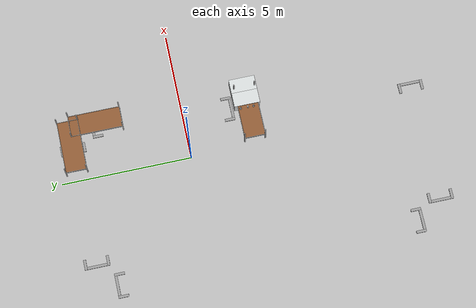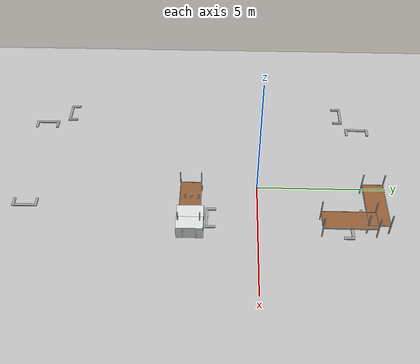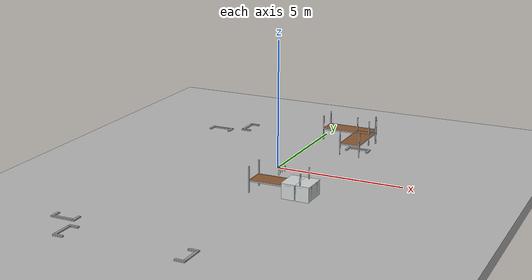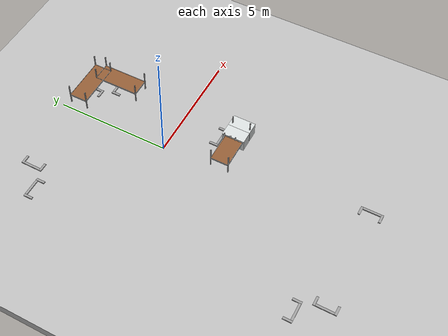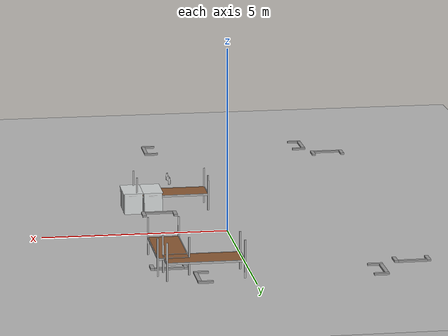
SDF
<sdf version="1.6">
 <world name="default">
  <light name="light0" type="directional">
   <pose>0 -18.818 8 0.75 -0 0</pose>
   <diffuse>0.5 0.5 0.5 1</diffuse>
   <specular>0.1 0.1 0.1 1</specular>
   <direction>0.1 0.1 -0.9</direction>
   <attenuation>
    <range>20</range>
    <constant>0.5</constant>
    <linear>0.01</linear>
    <quadratic>0.001</quadratic>
   </attenuation>
   <cast_shadows>0</cast_shadows>
  </light>
  <light name="light3" type="directional">
   <pose>3.9239 1.64974 4 0 1.2 0</pose>
   <diffuse>0.5 0.5 0.5 1</diffuse>
   <specular>0.1 0.1 0.1 1</specular>
   <direction>0.1 0.1 -0.9</direction>
   <attenuation>
    <range>20</range>
    <constant>0.5</constant>
    <linear>0.01</linear>
    <quadratic>0.001</quadratic>
   </attenuation>
   <cast_shadows>0</cast_shadows>
  </light>
  <light name="light5" type="directional">
   <pose>0.454419 12.4783 5 -0.8 0 0</pose>
   <diffuse>0.5 0.5 0.5 1</diffuse>
   <specular>0.1 0.1 0.1 1</specular>
   <direction>0.1 0.1 -0.9</direction>
   <attenuation>
    <range>20</range>
    <constant>0.5</constant>
    <linear>0.01</linear>
    <quadratic>0.001</quadratic>
   </attenuation>
   <cast_shadows>0</cast_shadows>
  </light>
  <scene>
   <shadows>false</shadows>
   <ambient>0.5 0.5 0.5 1.0</ambient>
   <grid>false</grid>
   <sky><time>22</time><sunrise>20</sunrise><sunset>21</sunset><clouds><humidity>0</humidity></clouds></sky>
  </scene>
  <include><uri>model://ground_plane</uri></include>
  <include><uri>model://moon_surface</uri><pose>0 0 -0.25 0 0 0</pose></include>
  <include><uri>model://rack_base</uri><name>rack_base</name><pose>1.421 4.35 0.05 0 -0 -1.57</pose></include>
  <include><uri>model://rack</uri><name>rack1</name><pose>1.26 4.35 0.1 0 -0 3.14</pose></include>
  <include><uri>model://rack</uri><name>rack2</name><pose>2.03 3.30 0.1 0 -0 -1.57</pose></include>
  <include><uri>model://rack</uri><name>rack3</name><pose>1.20 -2.53 0.0 0 0 -3.14</pose></include>
  <include><uri>model://greenCan</uri><name>greenCan</name><pose>1.28 -2.48 0.86 0.0 0.0 0.0</pose></include>
  <include><uri>model://blueBottle</uri><name>blueBottle</name><pose>1.28 -2.7 0.86 0.0 0.0 0.0</pose></include>
  <include><uri>model://redBottle</uri><name>redBottle</name><pose>1.28 -2.2 0.86 0.0 0.0 0.0</pose></include>
  <include><uri>model://drop_table</uri><name>drop_table_0</name><pose>2.3 -2.5 0 0 -0 0.0</pose></include>
  <include><uri>model://drop_table</uri><name>drop_table_1</name><pose>1.75 -2.5 0 0 -0 0.0</pose></include>
  <plugin name="gazebo_link_attacher" filename="libgazebo_link_attacher.so"/>
  <plugin name="gazebo_link_ur5_attacher" filename="libgazebo_link_ur5_attacher.so"/>
 </world>
</sdf>

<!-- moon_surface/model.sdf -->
<sdf version="1.6">
  <model name="moon_surface">
    <static>true</static>

    <link name="link">
      <pose>0 0 0.003 0 0 0</pose>

      <visual name="visual1">
        <cast_shadows>false</cast_shadows>
        <geometry>
          <mesh><uri>model://moon_surface/meshes/moon_surface.dae</uri></mesh>
        </geometry>
        <material>
          <shader type='pixel'/>
        </material>
        <pose>0 0 0 0 0 0</pose>
        <transparency>0</transparency>
      </visual>
    </link>
  </model>
</sdf>

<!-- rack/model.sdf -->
<sdf version='1.6'>
  <model name='rack'>
    <link name="surface">
      <inertial>
          <mass>0.1</mass>
          <inertia>
              <ixx>0.00001</ixx>
              <ixy>0.000</ixy>
              <ixz>0.000</ixz>
              <iyy>0.00001</iyy>
              <iyz>0.000</iyz>
              <izz>0.00001</izz>
          </inertia>
      </inertial>
      <visual name='surface_visual'>
        <pose relative_to=''>0 0 0.45 0 0 0</pose>
        <geometry>
          <box>
            <size>2 0.8 0.03</size>
          </box>
        </geometry>
        <material>
          <ambient>0.55 0.35 0.2 1</ambient>
          <diffuse>0.55 0.35 0.2 1</diffuse>
          <specular>0.1 0.1 0.1 1</specular>
          <emissive>0 0 0 1</emissive>
        </material>
        <transparency>0</transparency>
        <cast_shadows>1</cast_shadows>
      </visual>
      <collision name='surface_collision'>
        <pose relative_to=''>0 0 0.45 0 0 0</pose>
        <laser_retro>0</laser_retro>
        <max_contacts>10</max_contacts>
        <geometry>
          <box>
            <size>2 0.82 0.03</size>
          </box>
        </geometry>
        <surface>
          <friction>
            <ode>
              <mu>1000000</mu>
              <mu2>1000000</mu2>
            </ode>
          </friction>
          <bounce>
            <restitution_coefficient>0</restitution_coefficient>
          </bounce>
          <contact>
            <ode>
              <kp>1e13</kp>
              <kd>1</kd>
            </ode>
          </contact>
        </surface>
      </collision>

      <visual name='left_holding_visual'>
        <pose relative_to=''>0 0.4 0.45 0 0 0</pose>
        <geometry>
          <box>
            <size>1.98 0.02 0.05</size>
          </box>
        </geometry>
        <material>
          <ambient>0.3 0.3 0.3 1</ambient>
          <diffuse>0.7 0.7 0.7 1</diffuse>
          <specular>0.01 0.01 0.01 1</specular>
          <emissive>0 0 0 1</emissive>
          <pbr>
            <metal>
              <roughness>0.8</roughness>
              <metalness>0.1</metalness>
            </metal>
          </pbr>
        </material>
        <transparency>0</transparency>
        <cast_shadows>1</cast_shadows>
      </visual>

      <visual name='right_holding_visual'>
        <pose relative_to=''>0 -0.4 0.45 0 0 0</pose>
        <geometry>
          <box>
            <size>1.98 0.02 0.05</size>
          </box>
        </geometry>
        <material>
          <ambient>0.3 0.3 0.3 1</ambient>
          <diffuse>0.7 0.7 0.7 1</diffuse>
          <specular>0.01 0.01 0.01 1</specular>
          <emissive>0 0 0 1</emissive>
          <pbr>
            <metal>
              <roughness>0.8</roughness>
              <metalness>0.1</metalness>
            </metal>
          </pbr>
        </material>
        <transparency>0</transparency>
        <cast_shadows>1</cast_shadows>
      </visual>

      <visual name='front_holding_visual'>
        <pose relative_to=''>1.0 0 0.45 0 0 1.57</pose>
        <geometry>
          <box>
            <size>0.8 0.02 0.05</size>
          </box>
        </geometry>
        <material>
          <ambient>0.3 0.3 0.3 1</ambient>
          <diffuse>0.7 0.7 0.7 1</diffuse>
          <specular>0.01 0.01 0.01 1</specular>
          <emissive>0 0 0 1</emissive>
          <pbr>
            <metal>
              <roughness>0.8</roughness>
              <metalness>0.1</metalness>
            </metal>
          </pbr>
        </material>
        <transparency>0</transparency>
        <cast_shadows>1</cast_shadows>
      </visual>

      <visual name='back_holding_visual'>
        <pose relative_to=''>-1.0 0 0.45 0 0 1.57</pose>
        <geometry>
          <box>
            <size>0.8 0.02 0.05</size>
          </box>
        </geometry>
        <material>
          <ambient>0.3 0.3 0.3 1</ambient>
          <diffuse>0.7 0.7 0.7 1</diffuse>
          <specular>0.01 0.01 0.01 1</specular>
          <emissive>0 0 0 1</emissive>
          <pbr>
            <metal>
              <roughness>0.8</roughness>
              <metalness>0.1</metalness>
            </metal>
          </pbr>
        </material>
        <transparency>0</transparency>
        <cast_shadows>1</cast_shadows>
      </visual>

      <visual name='front_left_leg_visual'>
        <pose relative_to=''>0.99 0.4 0.5 0 0 0</pose>
        <geometry>
          <box>
            <size>0.04 0.04 1.0</size>
          </box>
        </geometry>
        <material>
          <ambient>0.3 0.3 0.3 1</ambient>
          <diffuse>0.7 0.7 0.7 1</diffuse>
          <specular>0.01 0.01 0.01 1</specular>
          <emissive>0 0 0 1</emissive>
          <pbr>
            <metal>
              <roughness>0.8</roughness>
              <metalness>0.1</metalness>
            </metal>
          </pbr>
        </material>
        <cast_shadows>1</cast_shadows>
      </visual>
      <collision name='front_left_leg_collision'>
        <pose relative_to=''>0.99 0.4 0.5 0 0 0</pose>
        <laser_retro>0</laser_retro>
        <max_contacts>10</max_contacts>
        <geometry>
          <box>
            <size>0.04 0.04 1.0</size>
          </box>
        </geometry>
        <surface>
          <friction>
            <ode>
              <mu>0.1</mu>
              <mu2>0.1</mu2>
            </ode>
          </friction>
          <bounce>
            <restitution_coefficient>0</restitution_coefficient>
          </bounce>
          <contact>
            <ode>
              <kp>1e6</kp>
              <kd>1</kd>
            </ode>
          </contact>
        </surface>
      </collision>

      <visual name='front_right_leg_visual'>
        <pose relative_to=''>0.99 -0.4 0.5 0 0 0</pose>
        <geometry>
          <box>
            <size>0.04 0.04 1.0</size>
          </box>
        </geometry>
        <material>
          <ambient>0.3 0.3 0.3 1</ambient>
          <diffuse>0.7 0.7 0.7 1</diffuse>
          <specular>0.01 0.01 0.01 1</specular>
          <emissive>0 0 0 1</emissive>
          <pbr>
            <metal>
              <roughness>0.8</roughness>
              <metalness>0.1</metalness>
            </metal>
          </pbr>
        </material>
        <cast_shadows>1</cast_shadows>
      </visual>
      <collision name='front_right_leg_collision'>
        <pose relative_to=''>0.99 -0.4 0.5 0 0 0</pose>
        <laser_retro>0</laser_retro>
        <max_contacts>10</max_contacts>
        <geometry>
          <box>
            <size>0.04 0.04 1.0</size>
          </box>
        </geometry>
        <surface>
          <friction>
            <ode>
              <mu>0.1</mu>
              <mu2>0.1</mu2>
            </ode>
          </friction>
          <bounce>
            <restitution_coefficient>0</restitution_coefficient>
          </bounce>
          <contact>
            <ode>
              <kp>1e6</kp>
              <kd>1</kd>
            </ode>
          </contact>
        </surface>
      </collision>

      <visual name='back_left_leg_visual'>
        <pose relative_to=''>-0.99 0.4 0.5 0 0 0</pose>
        <geometry>
          <box>
            <size>0.04 0.04 1.0</size>
          </box>
        </geometry>
        <material>
          <ambient>0.3 0.3 0.3 1</ambient>
          <diffuse>0.7 0.7 0.7 1</diffuse>
          <specular>0.01 0.01 0.01 1</specular>
          <emissive>0 0 0 1</emissive>
          <pbr>
            <metal>
              <roughness>0.8</roughness>
              <metalness>0.1</metalness>
            </metal>
          </pbr>
        </material>
        <cast_shadows>1</cast_shadows>
      </visual>
      <collision name='back_left_leg_collision'>
        <pose relative_to=''>-0.99 0.4 0.5 0 0 0</pose>
        <laser_retro>0</laser_retro>
        <max_contacts>10</max_contacts>
        <geometry>
          <box>
            <size>0.04 0.04 1.0</size>
          </box>
        </geometry>
        <surface>
          <friction>
            <ode>
              <mu>0.1</mu>
              <mu2>0.1</mu2>
            </ode>
          </friction>
          <bounce>
            <restitution_coefficient>0</restitution_coefficient>
          </bounce>
          <contact>
            <ode>
              <kp>1e6</kp>
              <kd>1</kd>
            </ode>
          </contact>
        </surface>
      </collision>

      <visual name='back_right_leg_visual'>
        <pose relative_to=''>-0.99 -0.4 0.5 0 0 0</pose>
        <geometry>
          <box>
            <size>0.04 0.04 1.0</size>
          </box>
        </geometry>
        <material>
          <ambient>0.3 0.3 0.3 1</ambient>
          <diffuse>0.7 0.7 0.7 1</diffuse>
          <specular>0.01 0.01 0.01 1</specular>
          <emissive>0 0 0 1</emissive>
          <pbr>
            <metal>
              <roughness>0.8</roughness>
              <metalness>0.1</metalness>
            </metal>
          </pbr>
        </material>
        <cast_shadows>1</cast_shadows>
      </visual>
      <collision name='back_right_leg_collision'>
        <pose relative_to=''>-0.99 -0.4 0.5 0 0 0</pose>
        <laser_retro>0</laser_retro>
        <max_contacts>10</max_contacts>
        <geometry>
          <box>
            <size>0.04 0.04 1.0</size>
          </box>
        </geometry>
        <surface>
          <friction>
            <ode>
              <mu>0.1</mu>
              <mu2>0.1</mu2>
            </ode>
          </friction>
          <bounce>
            <restitution_coefficient>0</restitution_coefficient>
          </bounce>
          <contact>
            <ode>
              <kp>1e6</kp>
              <kd>1</kd>
            </ode>
          </contact>
        </surface>
      </collision>
    </link>

  </model>
</sdf>

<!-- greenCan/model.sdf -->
<sdf version='1.6'>
	<model name='Green Can'>
	<static>0</static>
	      <link name='link'>
	        <inertial>
	          <mass>0.3</mass>
	          <inertia>
	            <ixx>0.00055575</ixx>
	            <ixy>0</ixy>
	            <ixz>0</ixz>
	            <iyy>0.00055575</iyy>
	            <iyz>0</iyz>
	            <izz>0.0001755</izz>
	          </inertia>
	        </inertial>
	        <collision name='collision'>
	          <geometry>
	            <mesh>
	              <uri>model://greenCan/meshes/canGreen.dae</uri>
			<scale>0.033 0.033 0.033</scale>
	            </mesh>
	          </geometry>
	          <surface>
	            <friction>
	              <ode>
	                <mu>3</mu>
	                <mu2>3</mu2>
	              </ode>
	              <torsional>
	                <ode/>
	              </torsional>
	            </friction>
	            <contact>
	              <ode>
	                <kp>1e+07</kp>
	                <kd>1</kd>
	                <min_depth>0.001</min_depth>
	                <max_vel>0.5</max_vel>
	              </ode>
	            </contact>
	            <bounce/>
	          </surface>
	          <max_contacts>10</max_contacts>
	        </collision>
	        <visual name='visual'>
	          <geometry>
	           	 <mesh>
	                <uri>model://greenCan/meshes/canGreen.dae</uri>
			<scale>0.033 0.033 0.033</scale>
	            </mesh>
	          </geometry>
	        </visual>
	        <self_collide>0</self_collide>
	        <enable_wind>0</enable_wind>
	        <kinematic>0</kinematic>
	      </link>
	    </model>
</sdf>

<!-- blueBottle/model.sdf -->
<sdf version='1.6'>
	<model name='Blue Bottle'>
	<static>0</static>
	      <link name='link'>
	        <inertial>
	          <mass>0.3</mass>
	          <inertia>
	            <ixx>0.00055575</ixx>
	            <ixy>0</ixy>
	            <ixz>0</ixz>
	            <iyy>0.00055575</iyy>
	            <iyz>0</iyz>
	            <izz>0.0001755</izz>
	          </inertia>
	        </inertial>
	        <collision name='collision'>
	          <geometry>
	            <mesh>
	              <uri>model://blueBottle/meshes/bottleBlue.dae</uri>
			<scale>0.034 0.034 0.034</scale>
	            </mesh>
	          </geometry>
	          <surface>
	            <friction>
	              <ode>
	                <mu>3</mu>
	                <mu2>3</mu2>
	              </ode>
	              <torsional>
	                <ode/>
	              </torsional>
	            </friction>
	            <contact>
	              <ode>
	                <kp>1e+07</kp>
	                <kd>1</kd>
	                <min_depth>0.001</min_depth>
	                <max_vel>0.5</max_vel>
	              </ode>
	            </contact>
	            <bounce/>
	          </surface>
	          <max_contacts>10</max_contacts>
	        </collision>
	        <visual name='visual'>
	          <geometry>
	           	 <mesh>
	                <uri>model://blueBottle/meshes/bottleBlue.dae</uri>
			<scale>0.034 0.034 0.034</scale>
	            </mesh>
	          </geometry>
	        </visual>
	        <self_collide>0</self_collide>
	        <enable_wind>0</enable_wind>
	        <kinematic>0</kinematic>
	      </link>
	    </model>
</sdf>

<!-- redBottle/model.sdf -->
<sdf version='1.6'>
	<model name='Red Bottle'>
	<static>0</static>
	      <link name='link'>
	        <inertial>
	          <mass>0.3</mass>
	          <inertia>
	            <ixx>0.00055575</ixx>
	            <ixy>0</ixy>
	            <ixz>0</ixz>
	            <iyy>0.00055575</iyy>
	            <iyz>0</iyz>
	            <izz>0.0001755</izz>
	          </inertia>
	        </inertial>
	        <collision name='collision'>
	          <geometry>
	            <mesh>
	              <uri>model://redBottle/meshes/bottleRedBlue.dae</uri>
			      <scale>0.034 0.034 0.034</scale>
	            </mesh>
	          </geometry>
	          <surface>
	            <friction>
	              <ode>
	                <mu>3</mu>
	                <mu2>3</mu2>
	              </ode>
	              <torsional>
	                <ode/>
	              </torsional>
	            </friction>
	            <contact>
	              <ode>
	                <kp>1e+07</kp>
	                <kd>1</kd>
	                <min_depth>0.001</min_depth>
	                <max_vel>0.5</max_vel>
	              </ode>
	            </contact>
	            <bounce/>
	          </surface>
	          <max_contacts>10</max_contacts>
	        </collision>
	        <visual name='visual'>
	          <geometry>
	           	 <mesh>
	                <uri>model://redBottle/meshes/bottleRedBlue.dae</uri>
			        <scale>0.034 0.034 0.034</scale>
	            </mesh>
	          </geometry>
	        </visual>
	        <self_collide>0</self_collide>
	        <enable_wind>0</enable_wind>
	        <kinematic>0</kinematic>
	      </link>
	    </model>
</sdf>

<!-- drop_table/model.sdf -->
<sdf version='1.7'>
  <model name='drop_table'>
    <link name='link'>
      <inertial>
        <mass>1</mass>
        <inertia>
          <ixx>0.166667</ixx>
          <ixy>0</ixy>
          <ixz>0</ixz>
          <iyy>0.166667</iyy>
          <iyz>0</iyz>
          <izz>0.166667</izz>
        </inertia>
        <pose>0 0 0 0 -0 0</pose>
      </inertial>
      <self_collide>0</self_collide>
      <enable_wind>0</enable_wind>
      <kinematic>0</kinematic>
      <pose>0 0 0 0 -0 0</pose>
      <gravity>1</gravity>
      <visual name='visual1'>
        <cast_shadows>0</cast_shadows>
        <geometry>
          <mesh>
            <uri>model://drop_table/meshes/table.dae</uri>
          </mesh>
        </geometry>
        <material>
          <shader type='pixel'>
            <normal_map>__default__</normal_map>
          </shader>
          <emissive>0 0 0 1</emissive>

        </material>
        <pose>0 0 0 0 -0 0</pose>
        <transparency>0</transparency>
        <pose>0 0 0 0 -0 0</pose>
        <transparency>0</transparency>
      </visual>
      <collision name='collision'>
        <laser_retro>0</laser_retro>
        <max_contacts>10</max_contacts>
        <pose>0 0 0.29 0 -0 0</pose>
        <geometry>
          <box>
            <size>0.5 1 0.58</size>
          </box>
        </geometry>
        <surface>
          <friction>
            <ode>
              <mu>1</mu>
              <mu2>1</mu2>
              <fdir1>0 0 0</fdir1>
              <slip1>0</slip1>
              <slip2>0</slip2>
            </ode>
            <torsional>
              <coefficient>1</coefficient>
              <patch_radius>0</patch_radius>
              <surface_radius>0</surface_radius>
              <use_patch_radius>1</use_patch_radius>
              <ode>
                <slip>0</slip>
              </ode>
            </torsional>
          </friction>
          <bounce>
            <restitution_coefficient>0</restitution_coefficient>
            <threshold>1e+06</threshold>
          </bounce>
          <contact>
            <collide_without_contact>0</collide_without_contact>
            <collide_without_contact_bitmask>1</collide_without_contact_bitmask>
            <collide_bitmask>1</collide_bitmask>
            <ode>
              <soft_cfm>0</soft_cfm>
              <soft_erp>0.2</soft_erp>
              <kp>1e+13</kp>
              <kd>1</kd>
              <max_vel>0.01</max_vel>
              <min_depth>0</min_depth>
            </ode>
            <bullet>
              <split_impulse>1</split_impulse>
              <split_impulse_penetration_threshold>-0.01</split_impulse_penetration_threshold>
              <soft_cfm>0</soft_cfm>
              <soft_erp>0.2</soft_erp>
              <kp>1e+13</kp>
              <kd>1</kd>
            </bullet>
          </contact>
        </surface>
      </collision>
    </link>
    <static>1</static>
    <allow_auto_disable>1</allow_auto_disable>
  </model>
</sdf>
